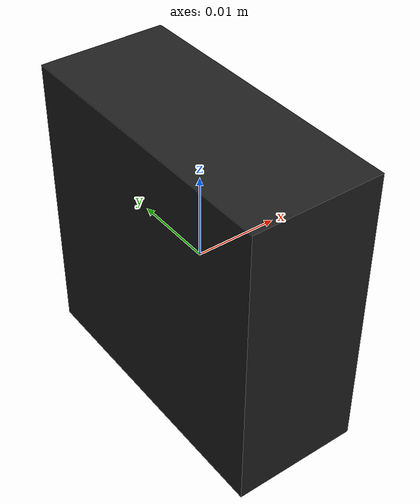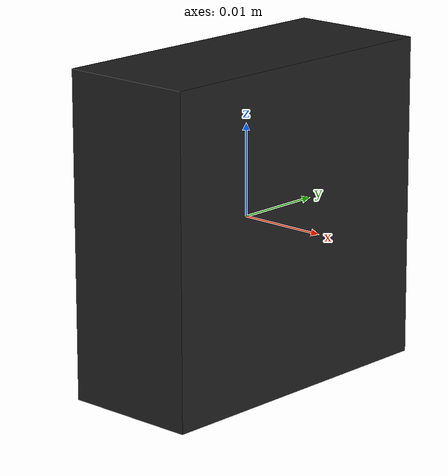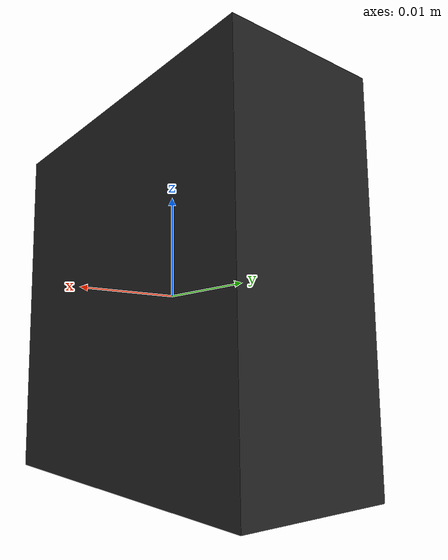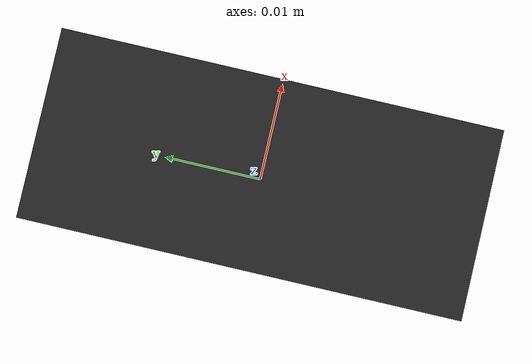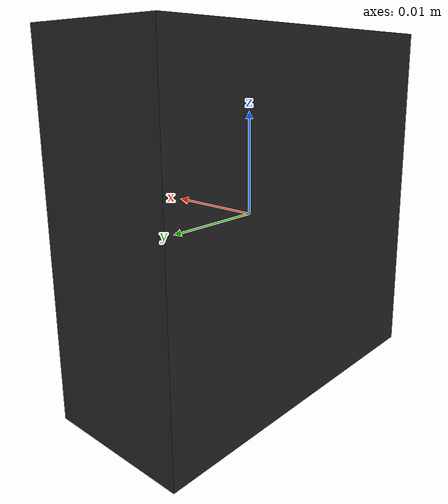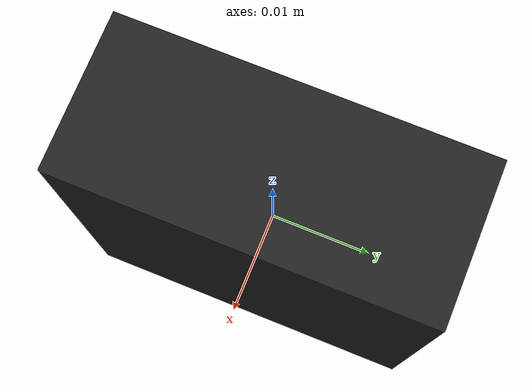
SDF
<?xml version="1.0"?>
<sdf version='1.6'>
    <!--模型名字，单目相机-->
    <model name='monocular'>
    <pose>0.0 0.0 0 0 0 0</pose><!--位置信息-->
    <!--申明一个link，名字为link-->
      <link name='link'>
      <!--物理属性-->
        <inertial>
          <mass>0.01</mass> <!--质量-->
          <!--惯性标签，定义模型当前link的惯性矩，是一个对称正定3x3矩阵-->
          <inertia>
            <ixx>4.15e-6</ixx>
          <ixy>0</ixy>
          <ixz>0</ixz>
          <iyy>2.407e-6</iyy>
          <iyz>0</iyz>
          <izz>2.407e-6</izz>
          </inertia>
        </inertial>
        <!--可视化标签，定义一些图形界面的视觉效果-->
        <visual name='visual'>
        <!--geometry标签，定义当前link的几何形状-->
          <geometry>
            <box>
              <size>0.015 0.035 0.035</size>  <!--长宽高分别为0.01的矩形-->
            </box>
          </geometry>
            <material>
                <script>
                    <name>Gazebo/Black</name>
                    <uri>file://media/materials/scripts/gazebo.material</uri>
                </script>
            </material>
        </visual>
        <!--传感器标签，定义一个名叫camera的传感器，它的类型是camera-->
        <sensor name='camera' type='camera'><!--注意type是SDF提供的，name是自己定义的，在当前sensor中必须唯一-->
           <!--相机标签，在其中定义一些相机的属性-->
          <camera name='__default__'> <!--name可以定义，也可以不定义，它的默认值是_default_-->
            <!-- FOV,120度 -->
            <horizontal_fov>2.0944</horizontal_fov> <!--定义水平视野场，此处为120度-->
            <!--image标签，功能是定义以像素为单位的图片大小和图片格式-->
            <image>
              <width>1280</width>  <!--图片大小为1280*720-->
              <height>720</height>
            </image>
            <!--定义远、近剪裁面，不会渲染远、近剪裁平面之外的对象-->
            <clip>
              <near>0.1</near><!--近剪裁面为0.1米-->
              <far>100</far><!--远剪裁面100m-->
            </clip>
            <!--噪音标签，定义噪音模型，它将应用到生成的图片上-->
            <noise>
              <type>gaussian</type> <!--高斯分布-->
              <mean>0.0</mean><!--高斯分布的均值为0-->
              <stddev>0.001</stddev><!--标准差为0.001-->
            </noise>
            <!--透镜标签，作用是定义相机镜头的投影参数-->
            <lens>
              <type>custom</type> <!--镜头映射的类型为custom，用户自定义,当前sdf支持立体投影、赤平面投影、等角投影等-->
              <custom_function> <!--定义投影方程r=c1*f*fun(theta/c2+c3)的参数-->
                <c1>1.05</c1> <!--线标度常数为1.05-->
                <c2>4</c2> <!--角标度常数为4-->
                <!--c3为角偏移常数，此处不定义，默认值为0，即无偏移-->
                <f>1</f> <!--相机焦距为1-->
                <fun>tan</fun> <!--fun为tan-->
              </custom_function>
              <scale_to_hfov>1</scale_to_hfov> <!--bool变量，默认值为1，即true，图像会以水平视野缩放，如果是false,图像则会根据投影类型参数来缩放-->
              <cutoff_angle>3.1415</cutoff_angle><!--这个标签表示180度以外的所有内容都会被隐藏-->
            </lens>
          </camera>

          <always_on>1</always_on> <!--bool值，定义传感器是否更新，1为true,即传感器会根据update_rate参数定义的频率更新-->
          <update_rate>30</update_rate> <!--更新频率参数，默认值为0-->
          <visualize>1</visualize> <!--传感器可视化参数，bool变量，1即为true,表示允许传感器在图形界面被观察到-->

          <!--插件标签，它可以作为world、model、sensor的子元素-->
          <!--插入一个名为camere_plugin的libgazebo_ros_camera.so插件，此插件的作用是关联摄像头-->
          <plugin name='camera_plugin' filename='libgazebo_ros_camera.so'>
              <alwaysOn>true</alwaysOn>
              <imageTopicName>image_raw</imageTopicName> <!--申明摄像头发布的消息话题为image_raw-->
              <cameraInfoTopicName>camera_info</cameraInfoTopicName> <!--用于发布相机信息的主题名称为camera_info-->
              <updateRate>30.0</updateRate> <!--更新频率为30-->
              <cameraName>monocular</cameraName> <!--摄像机命名为Monocular-->
              <frameName>/monocular_link</frameName><!--定义数据所在的参考系为/monocular_link-->
              <CxPrime>640</CxPrime>
              <Cx>640</Cx>
              <Cy>360</Cy>
              <hackBaseline>0</hackBaseline>
              <focalLength>369.502083</focalLength> <!--焦距为369.502083-->
              <distortionK1>0.0</distortionK1><!--畸变参数k1为0-->
              <distortionK2>0.0</distortionK2><!--畸变参数k2为0-->
              <distortionK3>0.0</distortionK3><!--畸变参数k3为0-->
              <distortionT1>0.0</distortionT1><!--畸变参数T1为0-->
              <distortionT2>0.0</distortionT2><!--畸变参数T2为0-->
          </plugin>
        </sensor>

        <self_collide>0</self_collide> <!--Bool变量，0为false,即不会和这个Model下的其他link发生碰撞-->
        <kinematic>0</kinematic> <!--bool变量，0为false,如果为true，则表示本link仅为运动学link-->
      </link>
  </model>
</sdf>
